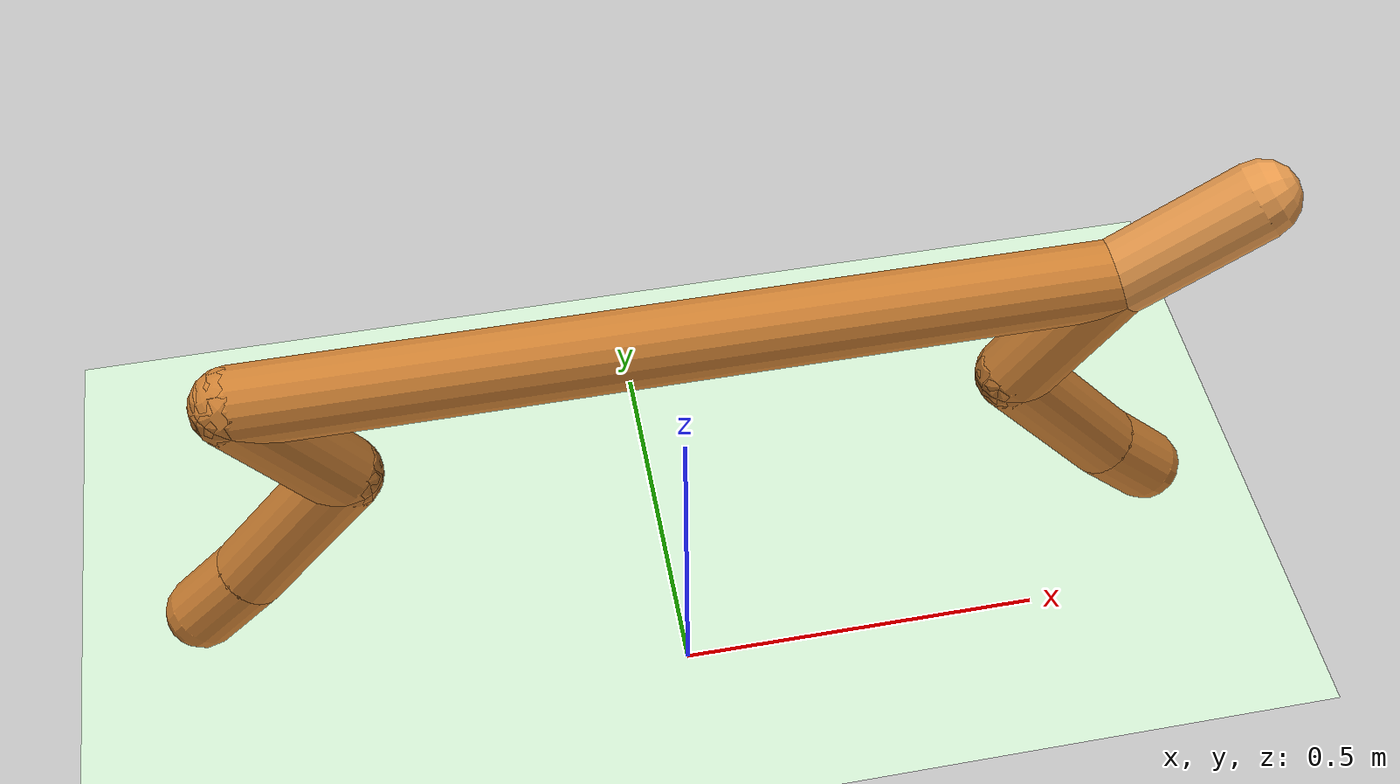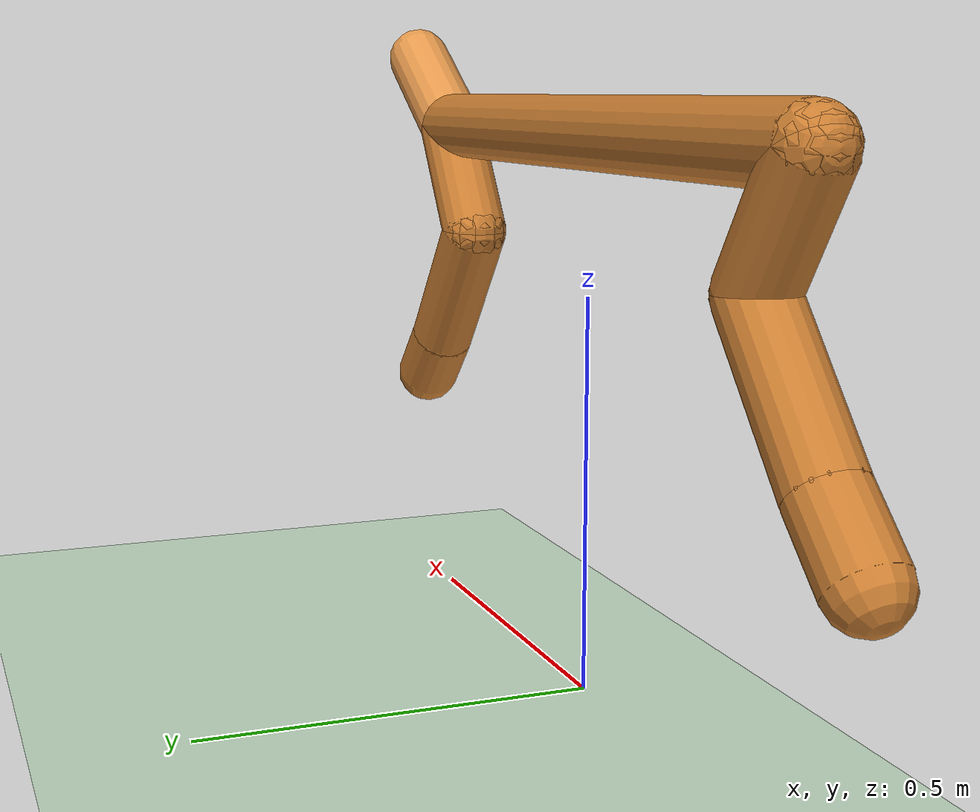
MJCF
<mujoco model="half_cheetah">
  <compiler angle="degree" inertiafromgeom="true"/>
  <option timestep="0.01"/>

  <default>
    <joint limited="true" damping="0.5" armature="0.1" stiffness="0"/>
    <geom contype="1" conaffinity="1" condim="3" friction="0.8 0.1 0.1" rgba="0.8 0.5 0.2 1"/>
  </default>

  <worldbody>
    <light diffuse="0.8 0.8 0.8" pos="0 0 3" dir="0 0 -1"/>
    <geom type="plane" size="40 40 0.1" rgba="0.8 0.9 0.8 1"/>

    <body name="torso" pos="0 0 0.7">
      <joint name="rootx" type="slide" axis="1 0 0" limited="false"/>
      <joint name="rootz" type="slide" axis="0 0 1" limited="false"/>
      <joint name="rooty" type="hinge" axis="0 1 0" limited="false"/>
      <geom type="capsule" fromto="-0.5 0 0  0.5 0 0" size="0.046" mass="6.25"/>

      <!-- Head -->
      <body name="head" pos="0.5 0 0">
        <geom type="capsule" fromto="0 0 0  0.15 0 0.1" size="0.046" mass="1.2" rgba="0.9 0.6 0.3 1"/>
      </body>

      <!-- Back thigh -->
      <body name="bthigh" pos="-0.5 0 0">
        <joint name="bthigh_joint" type="hinge" axis="0 1 0" range="-60 90"/>
        <geom type="capsule" fromto="0 0 0  0.1 0 -0.15" size="0.046" mass="2.3"/>
        <body name="bshin" pos="0.1 0 -0.15">
          <joint name="bshin_joint" type="hinge" axis="0 1 0" range="-70 -10"/>
          <geom type="capsule" fromto="0 0 0  -0.14 0 -0.17" size="0.046" mass="1.6"/>
          <body name="bfoot" pos="-0.14 0 -0.17">
            <joint name="bfoot_joint" type="hinge" axis="0 1 0" range="-30 50"/>
            <geom type="capsule" fromto="0 0 0  -0.07 0 -0.07" size="0.046" mass="1.0"/>
          </body>
        </body>
      </body>

      <!-- Front thigh -->
      <body name="fthigh" pos="0.5 0 0">
        <joint name="fthigh_joint" type="hinge" axis="0 1 0" range="-60 90"/>
        <geom type="capsule" fromto="0 0 0  -0.1 0 -0.15" size="0.046" mass="2.3"/>
        <body name="fshin" pos="-0.1 0 -0.15">
          <joint name="fshin_joint" type="hinge" axis="0 1 0" range="-70 -10"/>
          <geom type="capsule" fromto="0 0 0  0.14 0 -0.17" size="0.046" mass="1.6"/>
          <body name="ffoot" pos="0.14 0 -0.17">
            <joint name="ffoot_joint" type="hinge" axis="0 1 0" range="-30 50"/>
            <geom type="capsule" fromto="0 0 0  0.07 0 -0.07" size="0.046" mass="1.0"/>
          </body>
        </body>
      </body>
    </body>
  </worldbody>

  <actuator>
    <motor joint="bthigh_joint" gear="120" ctrlrange="-1 1" ctrllimited="true"/>
    <motor joint="bshin_joint" gear="90" ctrlrange="-1 1" ctrllimited="true"/>
    <motor joint="bfoot_joint" gear="60" ctrlrange="-1 1" ctrllimited="true"/>
    <motor joint="fthigh_joint" gear="120" ctrlrange="-1 1" ctrllimited="true"/>
    <motor joint="fshin_joint" gear="90" ctrlrange="-1 1" ctrllimited="true"/>
    <motor joint="ffoot_joint" gear="60" ctrlrange="-1 1" ctrllimited="true"/>
  </actuator>
</mujoco>
